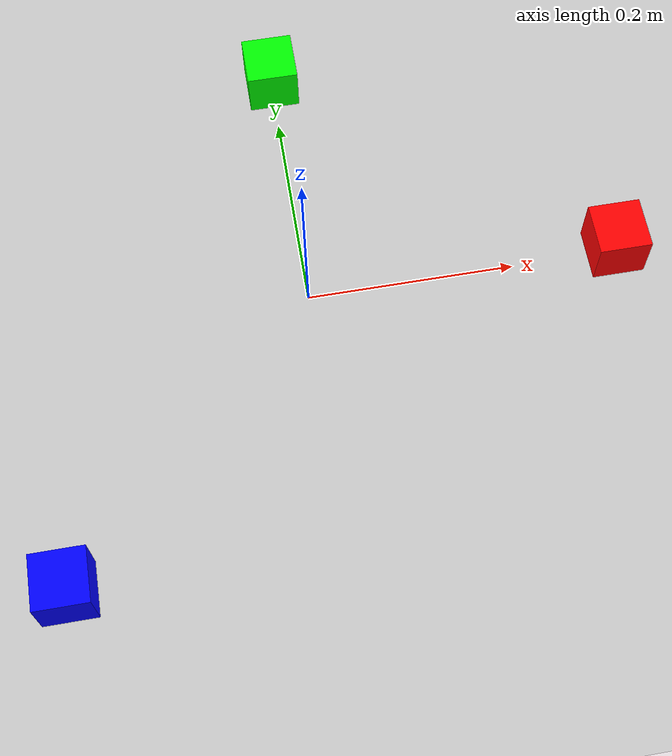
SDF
<?xml version="1.0" ?>
<sdf version="1.6">
  <world name="default">
  <physics type="ode">
      <max_step_size>0.002</max_step_size> <real_time_factor>1.0</real_time_factor>
      <real_time_update_rate>500</real_time_update_rate>
      <ode>
        <solver>
          <type>quick</type>
          <iters>100</iters> </solver>
      </ode>
    </physics>
  <gravity>0 0 -9.81</gravity>
    <include>
      <uri>model://sun</uri>
    </include>
    <include>
      <uri>model://ground_plane</uri>
    </include>

    <model name="red_cube">
      <pose>0.3 0.0 0.025 0 0 0</pose>
      <link name="link">
        <collision name="collision">
          <geometry><box><size>0.05 0.05 0.05</size></box></geometry>
        </collision>
        <visual name="visual">
          <geometry><box><size>0.05 0.05 0.05</size></box></geometry>
          <material>
            <ambient>1 0 0 1</ambient>
            <diffuse>1 0 0 1</diffuse>
          </material>
        </visual>
      </link>
    </model>

    <model name="green_cube">
      <pose>0.0 0.25 0.025 0 0 0</pose>
      <link name="link">
        <collision name="collision">
          <geometry><box><size>0.05 0.05 0.05</size></box></geometry>
        </collision>
        <visual name="visual">
          <geometry><box><size>0.05 0.05 0.05</size></box></geometry>
          <material>
            <ambient>0 1 0 1</ambient>
            <diffuse>0 1 0 1</diffuse>
          </material>
        </visual>
      </link>
    </model>

    <model name="blue_cube">
      <pose>-0.25 -0.25 0.025 0 0 0</pose>
      <link name="link">
        <collision name="collision">
          <geometry><box><size>0.05 0.05 0.05</size></box></geometry>
        </collision>
        <visual name="visual">
          <geometry><box><size>0.05 0.05 0.05</size></box></geometry>
          <material>
            <ambient>0 0 1 1</ambient>
            <diffuse>0 0 1 1</diffuse>
          </material>
        </visual>
      </link>
    </model>
  </world>
</sdf>
